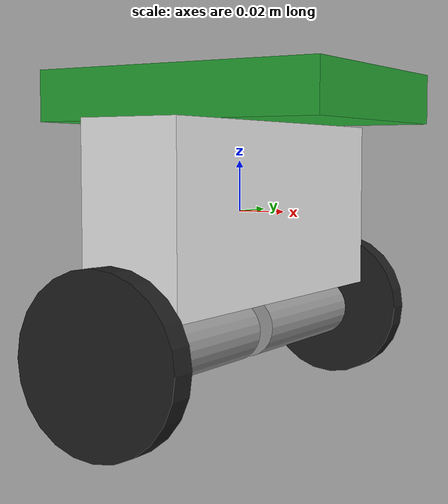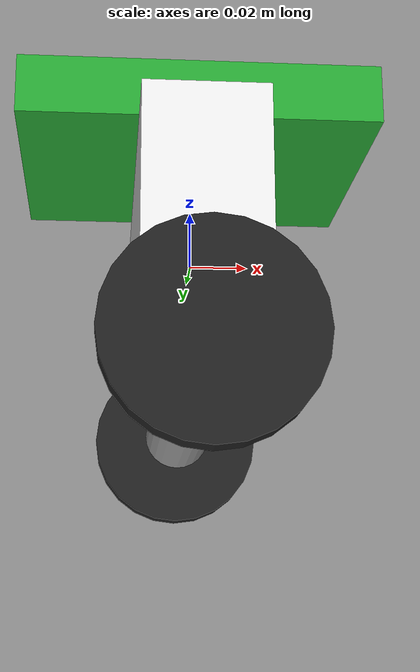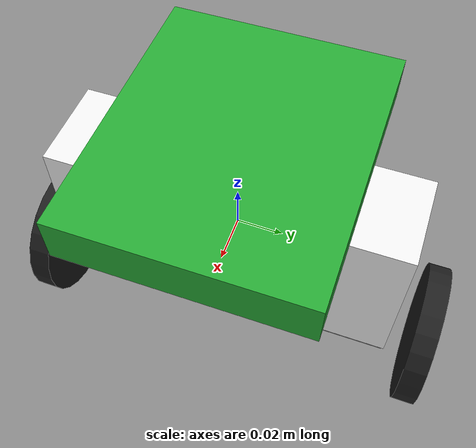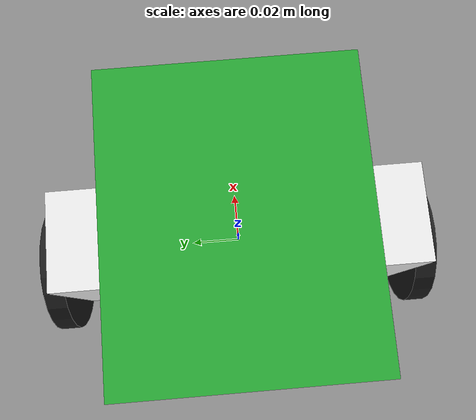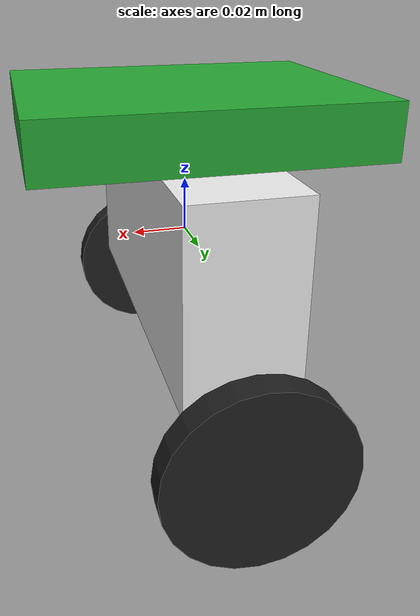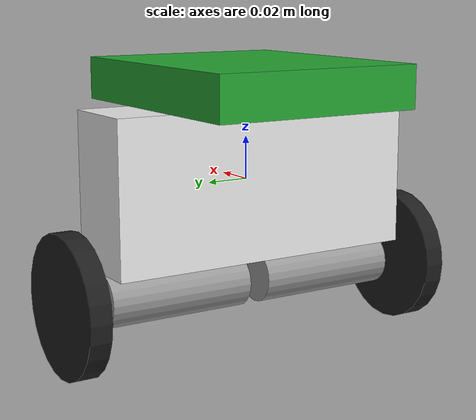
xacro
<?xml version="1.0"?>
<robot name="balancing" xmlns:xacro="http://ros.org/wiki/xacro">

<!-- Robot shape -->
<xacro:property name="W_weight" value="0.02"/>
<xacro:property name="W_l" value="0.01"/>
<xacro:property name="W_diam" value="0.065"/>

<xacro:property name="base_w" value="0.15"/>
<xacro:property name="base_h" value="0.07"/>
<xacro:property name="base_l" value=".04"/>
<xacro:property name="base_weight" value="0.1"/>

<xacro:property name="battery_w" value="0.1"/>
<xacro:property name="battery_h" value="0.02"/>
<xacro:property name="battery_l" value=".12"/>
<xacro:property name="battery_weight" value="0.15"/>

<xacro:property name="Mot_l" value="0.07"/>
<xacro:property name="Mot_diam" value="0.025"/>
<xacro:property name="Mot_weight" value="0.1"/>

<!-- IMU -->
<xacro:property name="noise" value="2.0"/>

<!-- DIFFERENTIAL DRIVE -->
<xacro:property name="update_rate" value="20"/>
<xacro:property name="torque" value="0.08"/>

<!-- WHEEL -->
  <xacro:macro name="wheel" params="side parent x y z">
    <joint name="wheel_${side}_joint" type="continuous">
      <origin xyz="${x} ${y} ${z}" rpy="0 0 0" />
      <parent link="${parent}"/>
      <child link="wheel_${side}_link" />
      <axis xyz="0 1 0"/>
    </joint>

    <link name="wheel_${side}_link">
      <inertial>
        <mass value="${W_weight}" />
        <origin xyz="0 0 0" rpy="1.57075 0 0" />
        <inertia ixx="${(W_l * W_l + W_diam * W_diam) * W_weight /12.0}" ixy="0.0" ixz="0.0"
          iyy="${(W_l * W_l + W_diam * W_diam) * W_weight /12.0}" iyz="0.0"
          izz="${W_weight/8.0 * W_diam * W_diam}" />
      </inertial>

      <visual>
        <origin xyz="0 0 0" rpy="1.57075 0 0" />
        <geometry>
             <cylinder length="${W_l}" radius="${W_diam/2}"/>
        </geometry>
      </visual>

      <collision>
        <origin xyz="0 0 0" rpy="1.57075 0 0" />
        <geometry>
          <cylinder length="${W_l}" radius="${W_diam/2}"/>
        </geometry>
      </collision>
    </link>

  <gazebo reference="wheel_${side}_link">
    <mu1>0.8</mu1>
    <mu2>0.8</mu2>
    <kp>10000</kp>
    <kd>10000</kd>
    <material>Gazebo/Black</material>
  </gazebo>
  </xacro:macro>

<!-- MOTOR -->
  <xacro:macro name="motor" params="side parent x y z">
    <joint name="motor_${side}_joint" type="fixed">
      <origin xyz="${x} ${y} ${z}" rpy="0 0 0" />
      <parent link="${parent}"/>
      <child link="motor_${side}_link" />
    </joint>

    <link name="motor_${side}_link">
      <inertial>
        <mass value="${Mot_weight}" />
        <origin xyz="0 0 0" rpy="1.57075 0 0" />
        <inertia ixx="${(Mot_l * Mot_l + Mot_diam * Mot_diam) * Mot_weight /12.0}" ixy="0.0" ixz="0.0"
          iyy="${(Mot_l * Mot_l + Mot_diam * Mot_diam) * Mot_weight /12.0}" iyz="0.0"
          izz="${Mot_weight/8.0 * Mot_diam * Mot_diam}" />
      </inertial>

      <visual>
        <origin xyz="0 0 0" rpy="1.57075 0 0" />
        <geometry>
          <cylinder length="${Mot_l}" radius="${Mot_diam/2}"/>
        </geometry>
      </visual>

      <collision>
        <origin xyz="0 0 0" rpy="1.57075 0 0" />
        <geometry>
          <cylinder length="${	Mot_l}" radius="${Mot_diam/2}"/>
        </geometry>
      </collision>
    </link>

  <gazebo reference="motor_${side}_link">
    <mu1>0.7</mu1>
    <mu2>0.7</mu2>
    <kp>10000</kp>
    <kd>10000</kd>
    <material>Gazebo/Gray</material>
  </gazebo>
  </xacro:macro>

  <xacro:macro name="battery" params="parent x y z">
    <link name="battery_link">

      <inertial>
        <mass value="${battery_weight}" />
        <origin xyz="0 0 0.0" />
        <inertia ixx="${(battery_w * battery_w + battery_h * battery_h) * battery_weight /12.0}" ixy="0.0" ixz="0.0"
          iyy="${(battery_h * battery_h + battery_l * battery_l) * battery_weight /12.0}" iyz="0.0"
          izz="${(battery_w * battery_w + battery_l * battery_l) * battery_weight /12.0}" />
      </inertial>

      <visual>
        <origin xyz="0 0 0" />
        <geometry>
             <box size="${battery_l} ${battery_w} ${battery_h}"/>
        </geometry>
      </visual>

      <collision>
        <origin xyz="0 0 0" />
        <geometry>
             <box size="${battery_l} ${battery_w} ${battery_h}"/>
        </geometry>
      </collision>
    </link>

  <gazebo reference="battery_link">
    <mu1>0.05</mu1>
    <mu2>0.05</mu2>
    <kp>10000</kp>
    <kd>10000</kd>
    <material>Gazebo/Green</material>
  </gazebo>

    <joint name="battery_joint" type="fixed">
      <origin xyz="${x} ${y} ${z}" rpy="0 0 0" />
      <parent link="${parent}"/>
      <child link="battery_link" />
    </joint>
  </xacro:macro>

    <link name="base_link">

      <inertial>
        <mass value="${base_weight}" />
        <origin xyz="0 0 0" />
        <inertia ixx="${(base_w * base_w + base_h * base_h) * base_weight /12.0}" ixy="0.0" ixz="0.0"
          iyy="${(base_h * base_h + base_l * base_l) * base_weight /12.0}" iyz="0.0"
          izz="${(base_w * base_w + base_l * base_l) * base_weight /12.0}" />
      </inertial>

      <visual>
        <origin xyz="0 0 0" />
        <geometry>
             <box size="${base_l} ${base_w} ${base_h}"/>
        </geometry>
      </visual>

      <collision>
        <origin xyz="0 0 0" />
        <geometry>
             <box size="${base_l} ${base_w} ${base_h}"/>
        </geometry>
      </collision>
    </link>

  <gazebo reference="base_link">
    <mu1>0.3</mu1>
    <mu2>0.3</mu2>
    <kp>10000</kp>
    <kd>10000</kd>
    <material>Gazebo/White</material>
  </gazebo>

   <xacro:motor parent="base_link" side="dx" x="0" y="0.04" z="-${(base_h+Mot_diam)/2}"/>
   <xacro:wheel parent="motor_dx_link" side="dx" x="0" y="0.05" z="0"/>
    <xacro:motor parent="base_link" side="sx" x="0" y="-0.04" z="-${(base_h+Mot_diam)/2}"/>
    <xacro:wheel parent="motor_sx_link" side="sx" x="0" y="-0.05" z="0"/>
    <xacro:battery parent="base_link" x="0" y="0" z="${(base_h + battery_h)/2}"/>

<!--  SENSORS -->
  <gazebo>
    <plugin name="imu_plugin" filename="libgazebo_ros_imu.so">
      <alwaysOn>true</alwaysOn>
      <bodyName>base_link</bodyName>
      <topicName>imu</topicName>
      <serviceName>imu_service</serviceName>
      <gaussianNoise>${noise}</gaussianNoise>
      <updateRate>20.0</updateRate>
    </plugin>
  </gazebo>

<!-- DIFFERENTIAL DRIVE -->
<gazebo>
  <plugin name="differential_drive_controller" filename="libgazebo_ros_diff_drive.so">
    <legacyMode>false</legacyMode>
    <alwaysOn>true</alwaysOn>
    <updateRate>${update_rate}</updateRate>
    <leftJoint>wheel_dx_joint</leftJoint>
    <rightJoint>wheel_sx_joint</rightJoint>
    <wheelSeparation>0.2</wheelSeparation>
    <wheelDiameter>${W_diam}</wheelDiameter>
    <torque>${torque}</torque>
    <commandTopic>cmd_vel</commandTopic>
    <odometryTopic>odom</odometryTopic>
    <odometryFrame>odom</odometryFrame>
    <robotBaseFrame>base_link</robotBaseFrame>

    <wheelTorque>${torque}</wheelTorque>
    <wheelAcceleration>0</wheelAcceleration>
    <publishWheelJointState>true</publishWheelJointState>
    <publishOdomTF>true</publishOdomTF>
    <publishWheelTF>true</publishWheelTF>

  </plugin>
</gazebo>

</robot>
